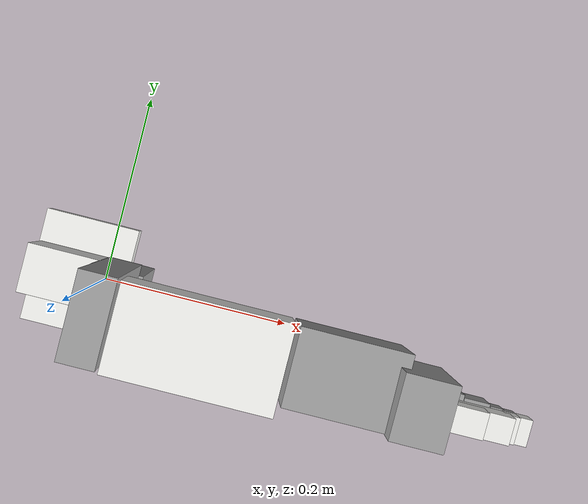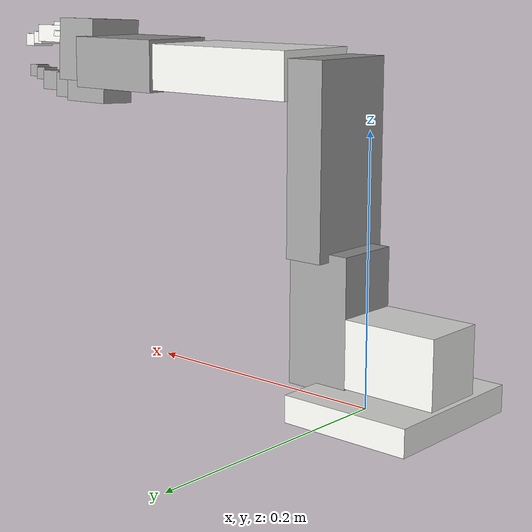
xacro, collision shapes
<?xml version="1.0"?>
<robot xmlns:xacro="http://www.ros.org/wiki/xacro" name="so100">
    <xacro:arg name="initial_positions_file" default="initial_positions.yaml" />

    <!-- Import so100 urdf file -->
    <xacro:include filename="$(find so_arm101_description)/urdf/so_arm_101_simplified_best.urdf" />

    <!-- Import control_xacro -->
    <xacro:include filename="so100.ros2_control.xacro" />

    <xacro:so100_ros2_control name="FakeSystem" initial_positions_file="$(arg initial_positions_file)"/>

</robot>

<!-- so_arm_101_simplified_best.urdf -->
<robot name="so100">

  <link name="world"/>
    <joint name="world_to_base" type="fixed">
      <parent link="world"/>
      <child link="base"/>
      <origin xyz="0.124202 0.168068 -0.0300817" rpy="0 0 0"/>
    </joint>

  <link name="base">
    <inertial>
      <origin xyz="-0.14932 -0.16812 0.065966" rpy="0 0 0"/>
      <mass value="0.147"/>
      <inertia ixx="0.000114686" ixy="-4.59787e-07" ixz="4.97151e-06" iyy="0.000136117" iyz="9.75275e-08" izz="0.000130364"/>
    </inertial>
    <visual>
      <origin xyz="-0.169402 -0.168167 0.0300817" rpy="1.5708 -1.67685e-15 1.5708"/>
      <geometry>
        <mesh filename="package://so_arm101_description/meshes/base_motor_holder_so101_v1.stl" scale="0.001 0.001 0.001"/>
      </geometry>
      <material name="base_motor_holder_so101_v1_material">
        <color rgba="0.964706 0.964706 0.952941 1.0"/>
      </material>
    </visual>

    <!-- updated maually -->
    <collision>
      <origin xyz="-0.149402 -0.168167 0.0400817" rpy="1.5708 -1.67685e-15 1.5708"/>
      <geometry>
        <box size="0.12 0.02 0.10"/>
      </geometry>
    </collision>

    <visual>
      <origin xyz="-0.169402 -0.168068 0.0300817" rpy="1.5708 -1.6144e-15 1.5708"/>
      <geometry>
        <mesh filename="package://so_arm101_description/meshes/base_so101_v2.stl" scale="0.001 0.001 0.001"/>
      </geometry>
      <material name="base_so101_v2_material">
        <color rgba="0.964706 0.964706 0.952941 1.0"/>
      </material>
    </visual>
    <visual>
      <origin xyz="-0.136702 -0.168068 0.0761817" rpy="-8.21148e-16 7.84513e-18 1.249e-15"/>
      <geometry>
        <mesh filename="package://so_arm101_description/meshes/sts3215_03a_v1.stl" scale="0.001 0.001 0.001"/>
      </geometry>
      <material name="sts3215_03a_v1_material">
        <color rgba="0.627451 0.627451 0.627451 1.0"/>
      </material>
    </visual>

    <!-- updated maually -->
    <collision>
      <origin xyz="-0.146702 -0.168068 0.0761817" rpy="-8.21148e-16 7.84513e-18 1.249e-15"/>
      <geometry>
        <box size="0.10 0.05 0.05"/>
      </geometry>
    </collision>

    <visual>
      <origin xyz="-0.19402 -0.168267 0.0798817" rpy="1.5708 -1.35493e-14 1.5708"/>
      <geometry>
        <mesh filename="package://so_arm101_description/meshes/waveshare_mounting_plate_so101_v2.stl" scale="0.001 0.001 0.001"/>
      </geometry>
      <material name="waveshare_mounting_plate_so101_v2_material">
        <color rgba="0.964706 0.964706 0.952941 1.0"/>
      </material>
    </visual>
  </link>

  <link name="baseframe">
    <inertial>
      <origin xyz="0 0 0" rpy="0 0 0"/>
      <mass value="1e-9"/>
      <inertia ixx="0" ixy="0" ixz="0" iyy="0" iyz="0" izz="0"/>
    </inertial>
  </link>
  <joint name="baseframe_frame" type="fixed">
    <origin xyz="-0.163038 -0.168068 0.0324817" rpy="1.6144e-15 7.84513e-18 1.33799e-15"/>
    <parent link="base"/>
    <child link="baseframe"/>
    <axis xyz="0 0 0"/>
  </joint>

  <link name="shoulder">
    <inertial>
      <origin xyz="-0.0307604 -1.66727e-05 -0.0252713" rpy="0 0 0"/>
      <mass value="0.100006"/>
      <inertia ixx="8.3759e-05" ixy="7.55525e-08" ixz="-1.16342e-06" iyy="8.10403e-05" iyz="1.54663e-07" izz="2.39783e-05"/>
    </inertial>
    <visual>
      <origin xyz="-0.0303992 0.000422241 -0.0417" rpy="1.5708 1.5708 0"/>
      <geometry>
        <mesh filename="package://so_arm101_description/meshes/sts3215_03a_v1.stl" scale="0.001 0.001 0.001"/>
      </geometry>
      <material name="sts3215_03a_v1_2_material">
        <color rgba="0.627451 0.627451 0.627451 1.0"/>
      </material>
    </visual>
    <visual>
      <origin xyz="-0.0675992 -0.000177759 0.0158499" rpy="1.5708 -1.5708 0"/>
      <geometry>
        <mesh filename="package://so_arm101_description/meshes/motor_holder_so101_base_v1.stl" scale="0.001 0.001 0.001"/>
      </geometry>
      <material name="motor_holder_so101_base_v1_material">
        <color rgba="0.964706 0.964706 0.952941 1.0"/>
      </material>
    </visual>
    <visual>
      <origin xyz="0.0122008 2.22413e-05 0.0464" rpy="-1.5708 2.35221e-33 0"/>
      <geometry>
        <mesh filename="package://so_arm101_description/meshes/rotation_pitch_so101_v1.stl" scale="0.001 0.001 0.001"/>
      </geometry>
      <material name="rotation_pitch_so101_v1_material">
        <color rgba="0.964706 0.964706 0.952941 1.0"/>
      </material>
    </visual>

    <!-- maually -->
    <collision>
      <origin xyz="-0.025 0 0" rpy="0 0 0"/>
      <geometry>
        <box size="0.05 0.05 0.10"/>
      </geometry>
    </collision>
  </link>

  <link name="upper_arm">
    <inertial>
      <origin xyz="-0.0898471 -0.00838224 0.0184089" rpy="0 0 0"/>
      <mass value="0.103"/>
      <inertia ixx="4.08002e-05" ixy="-1.97819e-05" ixz="-4.03016e-08" iyy="0.000147318" iyz="8.97326e-09" izz="0.000142487"/>
    </inertial>
    <visual>
      <origin xyz="-0.11257 -0.0155 0.0187" rpy="-3.14159 -5.27356e-16 -1.5708"/>
      <geometry>
        <mesh filename="package://so_arm101_description/meshes/sts3215_03a_v1.stl" scale="0.001 0.001 0.001"/>
      </geometry>
      <material name="sts3215_03a_v1_3_material">
        <color rgba="0.627451 0.627451 0.627451 1.0"/>
      </material>
    </visual>

    <!-- maually -->
    <collision>
      <origin xyz="-0.060 0.0 0.018" rpy="0 0 0"/>
      <geometry>
        <box size="0.14 0.03 0.07"/>
      </geometry>
    </collision>

    <visual>
      <origin xyz="-0.065085 0.012 0.0182" rpy="3.14159 -0 -1.30911e-30"/>
      <geometry>
        <mesh filename="package://so_arm101_description/meshes/upper_arm_so101_v1.stl" scale="0.001 0.001 0.001"/>
      </geometry>
      <material name="upper_arm_so101_v1_material">
        <color rgba="0.964706 0.964706 0.952941 1.0"/>
      </material>
    </visual>
  </link>

  <link name="lower_arm">
    <inertial>
      <origin xyz="-0.0980701 0.00324376 0.0182831" rpy="0 0 0"/>
      <mass value="0.104"/>
      <inertia ixx="2.87438e-05" ixy="7.41152e-06" ixz="1.26409e-06" iyy="0.000159844" iyz="-4.90188e-08" izz="0.00014529"/>
    </inertial>
    <visual>
      <origin xyz="-0.0648499 -0.032 0.0182" rpy="3.14159 -0 6.67202e-31"/>
      <geometry>
        <mesh filename="package://so_arm101_description/meshes/under_arm_so101_v1.stl" scale="0.001 0.001 0.001"/>
      </geometry>
      <material name="under_arm_so101_v1_material">
        <color rgba="0.964706 0.964706 0.952941 1.0"/>
      </material>
    </visual>
    <visual>
      <origin xyz="-0.0648499 -0.032 0.018" rpy="-3.14159 -2.55351e-15 -2.56146e-31"/>
      <geometry>
        <mesh filename="package://so_arm101_description/meshes/motor_holder_so101_wrist_v1.stl" scale="0.001 0.001 0.001"/>
      </geometry>
      <material name="motor_holder_so101_wrist_v1_material">
        <color rgba="0.964706 0.964706 0.952941 1.0"/>
      </material>
    </visual>
    <visual>
      <origin xyz="-0.1224 0.0052 0.0187" rpy="-3.14159 -7.88861e-31 -3.14159"/>
      <geometry>
        <mesh filename="package://so_arm101_description/meshes/sts3215_03a_v1.stl" scale="0.001 0.001 0.001"/>
      </geometry>
      <material name="sts3215_03a_v1_4_material">
        <color rgba="0.627451 0.627451 0.627451 1.0"/>
      </material>
    </visual>

    <!-- maually -->
    <collision>
      <origin xyz="-0.055 0.005 0.018" rpy="0 0 0"/>
      <geometry>
        <box size="0.13 0.035 0.07"/>
      </geometry>
    </collision>
  </link>

  <link name="wrist">
    <inertial>
      <origin xyz="-0.000103312 -0.0386143 0.0281156" rpy="0 0 0"/>
      <mass value="0.079"/>
      <inertia ixx="3.68263e-05" ixy="1.7893e-08" ixz="-5.28128e-08" iyy="2.5391e-05" iyz="3.6412e-06" izz="2.1e-05"/>
    </inertial>
    <visual>
      <origin xyz="5.55112e-17 -0.0424 0.0306" rpy="1.5708 1.5708 0"/>
      <geometry>
        <mesh filename="package://so_arm101_description/meshes/sts3215_03a_no_horn_v1.stl" scale="0.001 0.001 0.001"/>
      </geometry>
      <material name="sts3215_03a_no_horn_v1_material">
        <color rgba="0.627451 0.627451 0.627451 1.0"/>
      </material>
    </visual>
    <visual>
      <origin xyz="0 -0.028 0.0181" rpy="-1.5708 -1.5708 0"/>
      <geometry>
        <mesh filename="package://so_arm101_description/meshes/wrist_roll_pitch_so101_v2.stl" scale="0.001 0.001 0.001"/>
      </geometry>
      <material name="wrist_roll_pitch_so101_v2_material">
        <color rgba="0.964706 0.964706 0.952941 1.0"/>
      </material>
    </visual>

    <!-- maually -->
    <collision>
      <origin xyz="0 -0.030 0.023" rpy="0 0 0"/>
      <geometry>
        <box size="0.04 0.084 0.06"/>
      </geometry>
    </collision>
  </link>

  <link name="gripper">
    <inertial>
      <origin xyz="0.000213627 0.000245138 -0.025187" rpy="0 0 0"/>
      <mass value="0.087"/>
      <inertia ixx="2.75087e-05" ixy="-3.35241e-07" ixz="-5.7352e-06" iyy="4.33657e-05" iyz="-5.17847e-08" izz="3.45059e-05"/>
    </inertial>
    <visual>
      <origin xyz="0.0077 0.0001 -0.0234" rpy="-1.5708 -5.19179e-17 -1.66533e-16"/>
      <geometry>
        <mesh filename="package://so_arm101_description/meshes/sts3215_03a_v1.stl" scale="0.001 0.001 0.001"/>
      </geometry>
      <material name="sts3215_03a_v1_5_material">
        <color rgba="0.627451 0.627451 0.627451 1.0"/>
      </material>
    </visual>

    <!--gripper base-->
    <collision>
      <origin xyz="0.0077 0.0001 -0.0234" rpy="0 0 0"/>
      <geometry>
        <box size="0.05 0.05 0.04"/>
      </geometry>
    </collision>

    <visual>
      <origin xyz="0 -0.000218214 0.000949706" rpy="-3.14159 -5.55112e-17 0"/>
      <geometry>
        <mesh filename="package://so_arm101_description/meshes/wrist_roll_follower_so101_v1.stl" scale="0.001 0.001 0.001"/>
      </geometry>
      <material name="wrist_roll_follower_so101_v1_material">
        <color rgba="0.964706 0.964706 0.952941 1.0"/>
      </material>
    </visual>

    <!--gripper-->
    <collision>
      <origin xyz="-0.025 0 -0.0225" rpy="0 0 0"/>
      <geometry>
        <box size="0.020 0.030 0.045"/>
      </geometry>
    </collision>
    <collision>
      <origin xyz="-0.023 0 -0.055" rpy="0 0 0"/>
      <geometry>
        <box size="0.020 0.020 0.020"/>
      </geometry>
    </collision>
    <collision>
      <origin xyz="-0.020 0 -0.075" rpy="0 0 0"/>
      <geometry>
        <box size="0.016 0.016 0.020"/>
      </geometry>
    </collision>
    <collision>
      <origin xyz="-0.015 0 -0.090" rpy="0 0 0"/>
      <geometry>
        <box size="0.010 0.014 0.010"/>
      </geometry>
    </collision>
    <collision>
      <origin xyz="-0.013 0 -0.100" rpy="0 0 0"/>
      <geometry>
        <box size="0.010 0.012 0.010"/>
      </geometry>
    </collision>

  </link>

  <link name="gripperframe">
    <inertial>
      <origin xyz="0 0 0" rpy="0 0 0"/>
      <mass value="1e-9"/>
      <inertia ixx="0" ixy="0" ixz="0" iyy="0" iyz="0" izz="0"/>
    </inertial>
  </link>

  <joint name="gripperframe_frame" type="fixed">
    <origin xyz="-0.0079 -0.000218121 -0.0981274" rpy="-0 1.5708 0"/>
    <parent link="gripper"/>
    <child link="gripperframe"/>
    <axis xyz="0 0 0"/>
  </joint>

  <link name="moving_jaw_so101_v1">
    <inertial>
      <origin xyz="-0.00157495 -0.0300244 0.0192755" rpy="0 0 0"/>
      <mass value="0.012"/>
      <inertia ixx="6.61427e-06" ixy="-3.19807e-07" ixz="-5.90717e-09" iyy="1.89032e-06" iyz="-1.09945e-07" izz="5.28738e-06"/>
    </inertial>
    <visual>
      <origin xyz="-5.55112e-17 0 0.0189" rpy="9.53145e-17 6.93889e-18 1.24077e-24"/>
      <geometry>
        <mesh filename="package://so_arm101_description/meshes/moving_jaw_so101_v1.stl" scale="0.001 0.001 0.001"/>
      </geometry>
      <material name="moving_jaw_so101_v1_material">
        <color rgba="0.964706 0.964706 0.952941 1.0"/>
      </material>
    </visual>

    <!--base-->
    <collision>
      <origin xyz="0.003 -0.015 0.018" rpy="0 0 0"/>
      <geometry>
        <box size="0.012 0.060 0.02"/>
      </geometry>
    </collision>
    <collision>
      <origin xyz="-0.001 -0.025 0.018" rpy="0 0 0"/>
      <geometry>
        <box size="0.014 0.080 0.02"/>
      </geometry>
    </collision>
    <!--step-->
    <collision>
      <origin xyz="-0.005 -0.066 0.018" rpy="0 0 0"/>
      <geometry>
        <box size="0.010 0.01 0.02"/>
      </geometry>
    </collision>
    <!--tip-->
    <collision>
      <origin xyz="-0.007 -0.076 0.018" rpy="0 0 0"/>
      <geometry>
        <box size="0.010 0.01 0.02"/>
      </geometry>
    </collision>
  </link>

  <joint name="joint_6" type="revolute">
    <origin xyz="0.0202 0.0188 -0.0234" rpy="1.5708 -5.24284e-08 -1.41553e-15"/>
    <parent link="gripper"/>
    <child link="moving_jaw_so101_v1"/>
    <axis xyz="0 0 1"/>
    <limit effort="10" velocity="10" lower="-0.174533" upper="1.74533"/>
  </joint>
  <joint name="joint_5" type="revolute">
    <origin xyz="2.77556e-16 -0.0611 0.0181" rpy="1.5708 0.0486795 3.14159"/>
    <parent link="wrist"/>
    <child link="gripper"/>
    <axis xyz="0 0 1"/>
    <limit effort="10" velocity="10" lower="-2.74385" upper="2.84121"/>
  </joint>
  <joint name="joint_4" type="revolute">
    <origin xyz="-0.1349 0.0052 8.44651e-17" rpy="4.02456e-15 8.67362e-16 -1.5708"/>
    <parent link="lower_arm"/>
    <child link="wrist"/>
    <axis xyz="0 0 1"/>
    <limit effort="10" velocity="10" lower="-1.65806" upper="1.65806"/>
  </joint>
  <joint name="joint_3" type="revolute">
    <origin xyz="-0.11257 -0.028 2.09886e-16" rpy="-3.63608e-16 8.74301e-16 1.5708"/>
    <parent link="upper_arm"/>
    <child link="lower_arm"/>
    <axis xyz="0 0 1"/>
    <limit effort="10" velocity="10" lower="-1.74533" upper="1.5708"/>
  </joint>
  <joint name="joint_2" type="revolute">
    <origin xyz="-0.0303992 -0.0182778 -0.0542" rpy="-1.5708 -1.5708 0"/>
    <parent link="shoulder"/>
    <child link="upper_arm"/>
    <axis xyz="0 0 1"/>
    <limit effort="10" velocity="10" lower="-1.74533" upper="1.74533"/>
  </joint>
  <joint name="joint_1" type="revolute">
    <origin xyz="-0.124202 -0.168068 0.0948817" rpy="3.14159 4.18253e-17 -3.14159"/>
    <parent link="base"/>
    <child link="shoulder"/>
    <axis xyz="0 0 1"/>
    <limit effort="10" velocity="10" lower="-1.91986" upper="1.91986"/>
  </joint>
</robot>
